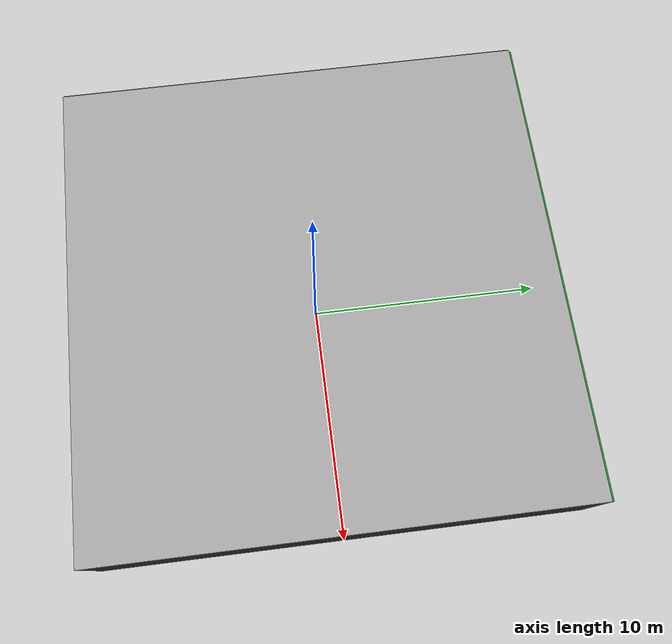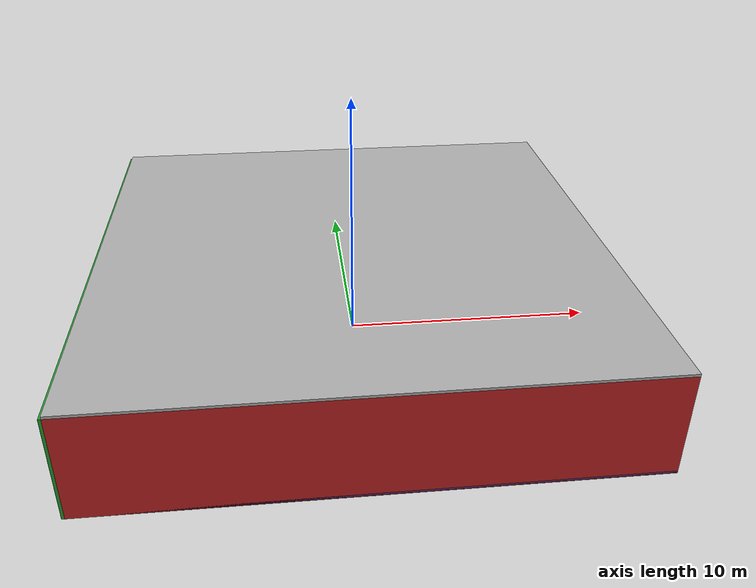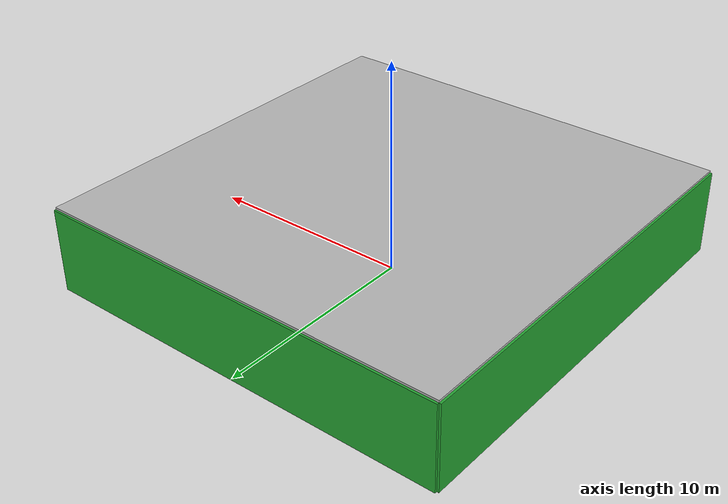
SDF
<sdf version="1.4">
 <world name="default">
  <physics type="ode">
   <max_step_size>0.001</max_step_size>
   <real_time_factor>1</real_time_factor>
   <real_time_update_rate>1000</real_time_update_rate>
   <gravity>0 0 -9.8</gravity>
  </physics>
  <scene><ambient>0.4 0.4 0.4 1</ambient><background>0.7 0.7 0.7 1</background><shadows>1</shadows></scene>
  <model name="Surrounding">
   <static>1</static>
   <link name="Ceiling">
    <collision name="Ceiling_Collision"><geometry><box><size>20 20 0.1</size></box></geometry></collision>
    <visual name="Ceiling_Visual">
     <geometry><box><size>20 20 0.1</size></box></geometry>
     <material>
      <script><uri>file://media/materials/scripts/gazebo.material</uri><name>Gazebo/LightOff</name></script>
     </material>
    </visual>
    <pose>0 0 4.05 0 0 0</pose>
   </link>
   <link name="Wall_South">
    <collision name="Wall_South_Collision">
     <geometry><box><size>20 0 4</size></box></geometry>
     <pose>0 0 2 0 -0 0</pose>
    </collision>
    <visual name="Wall_South_Visual">
     <pose>0 0 2 0 -0 0</pose>
     <geometry><box><size>20 0 4</size></box></geometry>
     <material>
      <script><uri>file://media/materials/scripts/gazebo.material</uri><name>Gazebo/Red</name></script>
     </material>
    </visual>
    <velocity_decay><linear>0</linear><angular>0</angular></velocity_decay>
    <pose>0 -10 0 0 -0 0</pose>
   </link>
   <link name="Wall_East">
    <collision name="Wall_21_Collision">
     <geometry><box><size>20 0 4</size></box></geometry>
     <pose>0 0 2 0 -0 0</pose>
    </collision>
    <visual name="Wall_21_Visual">
     <pose>0 0 2 0 -0 0</pose>
     <geometry><box><size>20 0 4</size></box></geometry>
     <material>
      <script><uri>file://media/materials/scripts/gazebo.material</uri><name>Gazebo/FlatBlack</name></script>
     </material>
    </visual>
    <velocity_decay><linear>0</linear><angular>0</angular></velocity_decay>
    <pose>10 0 0 0 -0 1.5708</pose>
   </link>
   <link name="Wall_North">
    <collision name="Wall_22_Collision">
     <geometry><box><size>20 0.2 4</size></box></geometry>
     <pose>0 0 2 0 -0 0</pose>
    </collision>
    <visual name="Wall_22_Visual">
     <pose>0 0 2 0 -0 0</pose>
     <geometry><box><size>20 0.2 4</size></box></geometry>
     <material>
      <script><uri>file://media/materials/scripts/gazebo.material</uri><name>Gazebo/Green</name></script>
     </material>
    </visual>
    <velocity_decay><linear>0</linear><angular>0</angular></velocity_decay>
    <pose>0 10 0 0 -0 0</pose>
   </link>
   <link name="Wall_West">
    <collision name="Wall_23_Collision">
     <geometry><box><size>20 0.2 4</size></box></geometry>
     <pose>0 0 2 0 -0 0</pose>
    </collision>
    <visual name="Wall_23_Visual">
     <pose>0 0 2 0 -0 0</pose>
     <geometry><box><size>20 0.2 4</size></box></geometry>
     <material>
      <script><uri>file://media/materials/scripts/gazebo.material</uri><name>Gazebo/Green</name></script>
     </material>
    </visual>
    <velocity_decay><linear>0</linear><angular>0</angular></velocity_decay>
    <pose>-10 0 0 0 0 -1.5708</pose>
   </link>
   <link name="Ground_link">
    <collision name="collision">
     <pose>0 0 .05 0 -0 0</pose>
     <geometry><box><size>20 20 0.1</size></box></geometry>
    </collision>
    <visual name="visual">
     <pose>0 0 .05 0 -0 0</pose>
     <geometry><box><size>20 20 0.1</size></box></geometry>
     <material>
      <script><uri>file://media/materials/scripts/gazebo.material</uri><name>Gazebo/BlueTransparent</name></script>
     </material>
    </visual>
   </link>
   <static>1</static>
  </model>
  <spherical_coordinates>
   <surface_model>EARTH_WGS84</surface_model>
   <latitude_deg>0</latitude_deg>
   <longitude_deg>0</longitude_deg>
   <elevation>0</elevation>
   <heading_deg>0</heading_deg>
  </spherical_coordinates>
  <light name="lightball_0" type="diffuse">
   <diffuse>0.8 0.8 0.8 1</diffuse>
   <specular>0.2 0.2 0.2 1</specular>
   <attenuation>
    <range>100</range>
    <constant>0.7</constant>
    <linear>0.01</linear>
    <quadratic>0.001</quadratic>
   </attenuation>
   <direction>-0.5 0.1 -0.9</direction>
   <pose>7.54759628249 3.5170015428 2.12966212245 0 0 0</pose>
  </light>
  <light name="lightball_1" type="diffuse">
   <diffuse>0.8 0.8 0.8 1</diffuse>
   <specular>0.2 0.2 0.2 1</specular>
   <attenuation>
    <range>100</range>
    <constant>0.7</constant>
    <linear>0.01</linear>
    <quadratic>0.001</quadratic>
   </attenuation>
   <direction>-0.5 0.1 -0.9</direction>
   <pose>4.18579751937 3.17313857253 0.708575945205 0 0 0</pose>
  </light>
  <light name="lightball_2" type="diffuse">
   <diffuse>0.8 0.8 0.8 1</diffuse>
   <specular>0.2 0.2 0.2 1</specular>
   <attenuation>
    <range>100</range>
    <constant>0.7</constant>
    <linear>0.01</linear>
    <quadratic>0.001</quadratic>
   </attenuation>
   <direction>-0.5 0.1 -0.9</direction>
   <pose>-6.69960521254 -1.26834901182 3.74358991565 0 0 0</pose>
  </light>
  <light name="lightball_3" type="diffuse">
   <diffuse>0.8 0.8 0.8 1</diffuse>
   <specular>0.2 0.2 0.2 1</specular>
   <attenuation>
    <range>100</range>
    <constant>0.7</constant>
    <linear>0.01</linear>
    <quadratic>0.001</quadratic>
   </attenuation>
   <direction>-0.5 0.1 -0.9</direction>
   <pose>3.14828389095 0.538726785191 1.09333234281 0 0 0</pose>
  </light>
  <light name="lightball_4" type="diffuse">
   <diffuse>0.8 0.8 0.8 1</diffuse>
   <specular>0.2 0.2 0.2 1</specular>
   <attenuation>
    <range>100</range>
    <constant>0.7</constant>
    <linear>0.01</linear>
    <quadratic>0.001</quadratic>
   </attenuation>
   <direction>-0.5 0.1 -0.9</direction>
   <pose>1.6676439723 3.6906395983 2.98576522516 0 0 0</pose>
  </light>
  <light name="lightball_5" type="diffuse">
   <diffuse>0.8 0.8 0.8 1</diffuse>
   <specular>0.2 0.2 0.2 1</specular>
   <attenuation>
    <range>100</range>
    <constant>0.7</constant>
    <linear>0.01</linear>
    <quadratic>0.001</quadratic>
   </attenuation>
   <direction>-0.5 0.1 -0.9</direction>
   <pose>-3.93399369963 -2.35812336119 2.13718044926 0 0 0</pose>
  </light>
  <light name="lightball_6" type="diffuse">
   <diffuse>0.8 0.8 0.8 1</diffuse>
   <specular>0.2 0.2 0.2 1</specular>
   <attenuation>
    <range>100</range>
    <constant>0.7</constant>
    <linear>0.01</linear>
    <quadratic>0.001</quadratic>
   </attenuation>
   <direction>-0.5 0.1 -0.9</direction>
   <pose>-6.12491631525 9.56140633596 0.97857873711 0 0 0</pose>
  </light>
  <light name="lightball_7" type="diffuse">
   <diffuse>0.8 0.8 0.8 1</diffuse>
   <specular>0.2 0.2 0.2 1</specular>
   <attenuation>
    <range>100</range>
    <constant>0.7</constant>
    <linear>0.01</linear>
    <quadratic>0.001</quadratic>
   </attenuation>
   <direction>-0.5 0.1 -0.9</direction>
   <pose>-4.07092802987 6.77257638956 1.61315752529 0 0 0</pose>
  </light>
  <light name="lightball_8" type="diffuse">
   <diffuse>0.8 0.8 0.8 1</diffuse>
   <specular>0.2 0.2 0.2 1</specular>
   <attenuation>
    <range>100</range>
    <constant>0.7</constant>
    <linear>0.01</linear>
    <quadratic>0.001</quadratic>
   </attenuation>
   <direction>-0.5 0.1 -0.9</direction>
   <pose>2.90853421125 2.68167802753 0.705003848646 0 0 0</pose>
  </light>
  <light name="lightball_9" type="diffuse">
   <diffuse>0.8 0.8 0.8 1</diffuse>
   <specular>0.2 0.2 0.2 1</specular>
   <attenuation>
    <range>100</range>
    <constant>0.7</constant>
    <linear>0.01</linear>
    <quadratic>0.001</quadratic>
   </attenuation>
   <direction>-0.5 0.1 -0.9</direction>
   <pose>1.24800099428 -2.48522607038 0.895010885771 0 0 0</pose>
  </light>
  <light name="lightball_10" type="diffuse">
   <diffuse>0.8 0.8 0.8 1</diffuse>
   <specular>0.2 0.2 0.2 1</specular>
   <attenuation>
    <range>100</range>
    <constant>0.7</constant>
    <linear>0.01</linear>
    <quadratic>0.001</quadratic>
   </attenuation>
   <direction>-0.5 0.1 -0.9</direction>
   <pose>-7.72572107348 -0.205610527645 1.23481489707 0 0 0</pose>
  </light>
  <include><uri>model://cabinet</uri><pose>-7.42654451562 0.546059101927 0 0 0 3.00809244864</pose></include>
  <include><uri>model://cabinet</uri><pose>-4.74487437794 -2.24245742519 0 0 0 1.05774105301</pose></include>
  <include><uri>model://cabinet</uri><pose>-2.44776601265 -0.673818069403 0 0 0 1.43165432912</pose></include>
  <include>
   <uri>model://robocup_3Dsim_goal</uri>
   <pose>-0.493949980512 5.50880634267 0 0 0 2.57257669081</pose>
  </include>
  <include><uri>model://table</uri><pose>-1.19307583704 7.02291974256 0 0 0 2.81391568977</pose></include>
  <include><uri>model://cabinet</uri><pose>2.50169516608 -2.19986687486 0 0 0 0.717638305982</pose></include>
  <include>
   <uri>model://construction_cone</uri>
   <pose>0.593346881002 8.63699484525 0 0 0 1.37968842568</pose>
  </include>
  <include><uri>model://table</uri><pose>5.51334640416 -7.15650790244 0 0 0 0.252270132203</pose></include>
 </world>
</sdf>

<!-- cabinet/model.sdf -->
<sdf version="1.5">
  <model name="cabinet">
    <static>true</static>
    <link name="cabinet_bottom_plate">
      <inertial>
        <pose>0 0 -1 0 0 0</pose>
        <inertia>
          <ixx>2.050000</ixx>
          <ixy>0</ixy>
          <ixz>0</ixz>
          <iyy>2.050000</iyy>
          <iyz>0</iyz>
          <izz>2.050000</izz>
        </inertia>
        <mass>25.000000</mass>
      </inertial>
      <collision name="cabinet_bottom_plate_geom">
        <pose>0 0 0.010000 0 0 0</pose>
        <geometry>
          <box>
            <size>0.450000 0.450000 0.020000</size>
          </box>
        </geometry>
      </collision>
      <visual name="cabinet_bottom_plate_geom_visual">
        <pose>0 0 0.010000 0 0 0</pose>
        <geometry>
          <box>
            <size>0.450000 0.450000 0.020000</size>
          </box>
        </geometry>
        <material>
          <script>
            <uri>model://media/materials/scripts/gazebo.material</uri>
            <name>Gazebo/Wood</name>
          </script>
        </material>
      </visual>
      <collision name="cabinet_bottom_plate_geom_cabinet_back_plate">
        <pose>0.235000 0 0.510000 0 0 0</pose>
        <geometry>
          <box>
            <size>0.020000 0.450000 1.020000</size>
          </box>
        </geometry>
      </collision>
      <visual name="cabinet_bottom_plate_geom_cabinet_back_plate_visual">
        <pose>0.235000 0 0.510000 0 0 0</pose>
        <geometry>
          <box>
            <size>0.020000 0.450000 1.020000</size>
          </box>
        </geometry>
        <material>
          <script>
            <uri>model://media/materials/scripts/gazebo.material</uri>
            <name>Gazebo/Wood</name>
          </script>
        </material>
      </visual>
      <collision name="cabinet_bottom_plate_geom_cabinet_left_plate">
        <pose>0 0.235000 0.510000 0 0 0</pose>
        <geometry>
          <box>
            <size>0.450000 0.020000 1.020000</size>
          </box>
        </geometry>
      </collision>
      <visual name="cabinet_bottom_plate_geom_cabinet_left_plate_visual">
        <pose>0 0.235000 0.510000 0 0 0</pose>
        <geometry>
          <box>
            <size>0.450000 0.020000 1.020000</size>
          </box>
        </geometry>
        <material>
          <script>
            <uri>model://media/materials/scripts/gazebo.material</uri>
            <name>Gazebo/Wood</name>
          </script>
        </material>
      </visual>
      <collision name="cabinet_bottom_plate_geom_cabinet_middle_plate">
        <pose>0 0 0.510000 0 0 0</pose>
        <geometry>
          <box>
            <size>0.450000 0.450000 0.020000</size>
          </box>
        </geometry>
      </collision>
      <visual name="cabinet_bottom_plate_geom_cabinet_middle_plate_visual">
        <pose>0 0 0.510000 0 0 0</pose>
        <geometry>
          <box>
            <size>0.450000 0.450000 0.020000</size>
          </box>
        </geometry>
        <material>
          <script>
            <uri>model://media/materials/scripts/gazebo.material</uri>
            <name>Gazebo/Wood</name>
          </script>
        </material>
      </visual>
      <collision name="cabinet_bottom_plate_geom_cabinet_right_plate">
        <pose>0 -0.235000 0.510000 0 0 0</pose>
        <geometry>
          <box>
            <size>0.450000 0.020000 1.020000</size>
          </box>
        </geometry>
      </collision>
      <visual name="cabinet_bottom_plate_geom_cabinet_right_plate_visual">
        <pose>0 -0.235000 0.510000 0 0 0</pose>
        <geometry>
          <box>
            <size>0.450000 0.020000 1.020000</size>
          </box>
        </geometry>
        <material>
          <script>
            <uri>model://media/materials/scripts/gazebo.material</uri>
            <name>Gazebo/Wood</name>
          </script>
        </material>
      </visual>
      <collision name="cabinet_bottom_plate_geom_cabinet_top_plate">
        <pose>0 0 1.010000 0 0 0</pose>
        <geometry>
          <box>
            <size>0.450000 0.450000 0.020000</size>
          </box>
        </geometry>
      </collision>
      <visual name="cabinet_bottom_plate_geom_cabinet_top_plate_visual">
        <pose>0 0 1.010000 0 0 0</pose>
        <geometry>
          <box>
            <size>0.450000 0.450000 0.020000</size>
          </box>
        </geometry>
        <material>
          <script>
            <uri>model://media/materials/scripts/gazebo.material</uri>
            <name>Gazebo/Wood</name>
          </script>
        </material>
      </visual>
    </link>
  </model>
</sdf>

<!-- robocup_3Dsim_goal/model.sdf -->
<sdf version="1.5">
  <model name="robocup_3d_goal">
    <static>true</static>
    <link name="left_post">
      <pose>0 1.05 0.45 0 0 0</pose>
      <collision name="collision">
        <geometry>
          <cylinder>
            <radius>0.05</radius>
            <length>0.9</length>
          </cylinder>
        </geometry>
      </collision>
      <visual name="visual">
        <geometry>
          <cylinder>
            <radius>0.05</radius>
            <length>0.9</length>
          </cylinder>
        </geometry>
        <material>
          <script>
            <uri>file://media/materials/scripts/gazebo.material</uri>
            <name>Gazebo/ZincYellow</name>
          </script>
        </material>
      </visual>
    </link>
    <link name="left_support_horiz_lower">
      <pose>0.30 1.05 0.01 0 0 0</pose>
      <collision name="collision">
        <geometry>
          <box>
            <size>0.50 0.02 0.02</size>
          </box>
        </geometry>
      </collision>
      <visual name="visual">
        <geometry>
          <box>
            <size>0.50 0.02 0.02</size>
          </box>
        </geometry>
        <material>
          <script>
            <uri>file://media/materials/scripts/gazebo.material</uri>
            <name>Gazebo/White</name>
          </script>
        </material>
      </visual>
    </link>
    <link name="left_support_horiz_upper">
      <pose>0.30 1.05 0.79 0 0 0</pose>
      <collision name="collision">
        <geometry>
          <box>
            <size>0.50 0.02 0.02</size>
          </box>
        </geometry>
      </collision>
      <visual name="visual">
        <geometry>
          <box>
            <size>0.50 0.02 0.02</size>
          </box>
        </geometry>
        <material>
          <script>
            <uri>file://media/materials/scripts/gazebo.material</uri>
            <name>Gazebo/White</name>
          </script>
        </material>
      </visual>
    </link>
    <link name="left_support_vertical">
      <pose>0.56 1.05 0.4 0 1.5708 0</pose>
      <collision name="collision">
        <geometry>
          <box>
            <size>0.80 0.02 0.02</size>
          </box>
        </geometry>
      </collision>
      <visual name="visual">
        <geometry>
          <box>
            <size>0.80 0.02 0.02</size>
          </box>
        </geometry>
        <material>
          <script>
            <uri>file://media/materials/scripts/gazebo.material</uri>
            <name>Gazebo/White</name>
          </script>
        </material>
      </visual>
    </link>
    <link name="right_support_horiz_lower">
      <pose>0.30 -1.05 0.01 0 0 0</pose>
      <collision name="collision">
        <geometry>
          <box>
            <size>0.50 0.02 0.02</size>
          </box>
        </geometry>
      </collision>
      <visual name="visual">
        <geometry>
          <box>
            <size>0.50 0.02 0.02</size>
          </box>
        </geometry>
        <material>
          <script>
            <uri>file://media/materials/scripts/gazebo.material</uri>
            <name>Gazebo/White</name>
          </script>
        </material>
      </visual>
    </link>
    <link name="right_support_horiz_upper">
      <pose>0.30 -1.05 0.79 0 0 0</pose>
      <collision name="collision">
        <geometry>
          <box>
            <size>0.50 0.02 0.02</size>
          </box>
        </geometry>
      </collision>
      <visual name="visual">
        <geometry>
          <box>
            <size>0.50 0.02 0.02</size>
          </box>
        </geometry>
        <material>
          <script>
            <uri>file://media/materials/scripts/gazebo.material</uri>
            <name>Gazebo/White</name>
          </script>
        </material>
      </visual>
    </link>
    <link name="right_support_vertical">
      <pose>0.56 -1.05 0.4 0 1.5708 0</pose>
      <collision name="collision">
        <geometry>
          <box>
            <size>0.80 0.02 0.02</size>
          </box>
        </geometry>
      </collision>
      <visual name="visual">
        <geometry>
          <box>
            <size>0.80 0.02 0.02</size>
          </box>
        </geometry>
        <material>
          <script>
            <uri>file://media/materials/scripts/gazebo.material</uri>
            <name>Gazebo/White</name>
          </script>
        </material>
      </visual>
    </link>
    <link name="center_support_horiz_lower">
      <pose>0.56 0 0.01 0 1.5708 0</pose>
      <collision name="collision">
        <geometry>
          <box>
            <size>0.02 2.08 0.02</size>
          </box>
        </geometry>
      </collision>
      <visual name="visual">
        <geometry>
          <box>
            <size>0.02 2.08 0.02</size>
          </box>
        </geometry>
        <material>
          <script>
            <uri>file://media/materials/scripts/gazebo.material</uri>
            <name>Gazebo/White</name>
          </script>
        </material>
      </visual>
    </link>
    <link name="center_support_horiz_upper">
      <pose>0.56 0 0.79 0 1.5708 0</pose>
      <collision name="collision">
        <geometry>
          <box>
            <size>0.02 2.08 0.02</size>
          </box>
        </geometry>
      </collision>
      <visual name="visual">
        <geometry>
          <box>
            <size>0.02 2.08 0.02</size>
          </box>
        </geometry>
        <material>
          <script>
            <uri>file://media/materials/scripts/gazebo.material</uri>
            <name>Gazebo/White</name>
          </script>
        </material>
      </visual>
    </link>
    <link name="right_post">
      <pose>0 -1.05 0.45 0 0 0</pose>
      <collision name="collision">
        <geometry>
          <cylinder>
            <radius>0.05</radius>
            <length>0.9</length>
          </cylinder>
        </geometry>
      </collision>
      <visual name="visual">
        <geometry>
          <cylinder>
            <radius>0.05</radius>
            <length>0.9</length>
          </cylinder>
        </geometry>
        <material>
          <script>
            <uri>file://media/materials/scripts/gazebo.material</uri>
            <name>Gazebo/ZincYellow</name>
          </script>
        </material>
      </visual>
    </link>
    <link name="crossbar">
      <pose>0 0 0.85 1.57 1.57 0</pose>
      <collision name="collision">
        <geometry>
          <cylinder>
            <radius>0.05</radius>
            <length>2.0</length>
          </cylinder>
        </geometry>
      </collision>
      <visual name="visual">
        <geometry>
          <cylinder>
            <radius>0.05</radius>
            <length>2.0</length>
          </cylinder>
        </geometry>
        <material>
          <script>
            <uri>file://media/materials/scripts/gazebo.material</uri>
            <name>Gazebo/ZincYellow</name>
          </script>
        </material>
      </visual>
    </link>
    <link name="center_net">
      <pose>0.56 0 0.40 0 0 0</pose>
      <collision name="collision">
        <geometry>
          <box>
            <size>0.01 2.1 0.80</size>
          </box>
        </geometry>
      </collision>
      <visual name="visual">
        <geometry>
          <box>
            <size>0.01 2.1 0.80</size>
          </box>
        </geometry>
        <material>
          <script>
            <uri>model://../model_source/models/robocup09_spl_field/materials/scripts/</uri>
            <uri>model://../model_source/models/robocup09_spl_field/materials/textures/</uri>
            <name>RoboCup/Net</name>
          </script>
        </material>
      </visual>
    </link>
    <link name="left_net">
      <pose>0.30 1.05 0.40 0 0 0</pose>
      <collision name="collision">
        <geometry>
          <box>
            <size>0.50 0.01 0.76</size>
          </box>
        </geometry>
      </collision>
      <visual name="visual">
        <geometry>
          <box>
            <size>0.50 0.01 0.76</size>
          </box>
        </geometry>
        <material>
          <script>
            <uri>model://../model_source/models/robocup09_spl_field/materials/scripts/</uri>
            <uri>model://../model_source/models/robocup09_spl_field/materials/textures/</uri>
            <name>RoboCup/Net</name>
          </script>
        </material>
      </visual>
    </link>
    <link name="right_net">
      <pose>0.30 -1.05 0.40 0 0 0</pose>
      <collision name="collision">
        <geometry>
          <box>
            <size>0.50 0.01 0.76</size>
          </box>
        </geometry>
      </collision>
      <visual name="visual">
        <geometry>
          <box>
            <size>0.50 0.01 0.76</size>
          </box>
        </geometry>
        <material>
          <script>
            <uri>model://../model_source/models/robocup09_spl_field/materials/scripts/</uri>
            <uri>model://../model_source/models/robocup09_spl_field/materials/textures/</uri>
            <name>RoboCup/Net</name>
          </script>
        </material>
      </visual>
    </link>
  </model>
</sdf>

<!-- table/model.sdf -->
<sdf version="1.5">
  <model name="table">
    <static>true</static>
    <link name="link">
      <collision name="surface">
        <pose>0 0 1.0 0 0 0</pose>
        <geometry>
          <box>
            <size>1.5 0.8 0.03</size>
          </box>
        </geometry>
        <surface>
          <friction>
            <ode>
              <mu>0.6</mu>
              <mu2>0.6</mu2>
            </ode>
          </friction>
        </surface>
      </collision>
      <visual name="visual1">
        <pose>0 0 1.0 0 0 0</pose>
        <geometry>
          <box>
            <size>1.5 0.8 0.03</size>
          </box>
        </geometry>
        <material>
          <script>
            <uri>model://media/materials/scripts/gazebo.material</uri>
            <name>Gazebo/Wood</name>
          </script>
        </material>
      </visual>
      <collision name="front_left_leg">
        <pose>0.68 0.38 0.5 0 0 0</pose>
        <geometry>
          <cylinder>
            <radius>0.02</radius>
            <length>1.0</length>
          </cylinder>
        </geometry>
      </collision>
      <visual name="front_left_leg">
        <pose>0.68 0.38 0.5 0 0 0</pose>
        <geometry>
          <cylinder>
            <radius>0.02</radius>
            <length>1.0</length>
          </cylinder>
        </geometry>
        <material>
          <script>
            <uri>model://media/materials/scripts/gazebo.material</uri>
            <name>Gazebo/Grey</name>
          </script>
        </material>
      </visual>
      <collision name="front_right_leg">
        <pose>0.68 -0.38 0.5 0 0 0</pose>
        <geometry>
          <cylinder>
            <radius>0.02</radius>
            <length>1.0</length>
          </cylinder>
        </geometry>
      </collision>
      <visual name="front_right_leg">
        <pose>0.68 -0.38 0.5 0 0 0</pose>
        <geometry>
          <cylinder>
            <radius>0.02</radius>
            <length>1.0</length>
          </cylinder>
        </geometry>
        <material>
          <script>
            <uri>model://media/materials/scripts/gazebo.material</uri>
            <name>Gazebo/Grey</name>
          </script>
        </material>
      </visual>
      <collision name="back_right_leg">
        <pose>-0.68 -0.38 0.5 0 0 0</pose>
        <geometry>
          <cylinder>
            <radius>0.02</radius>
            <length>1.0</length>
          </cylinder>
        </geometry>
      </collision>
      <visual name="back_right_leg">
        <pose>-0.68 -0.38 0.5 0 0 0</pose>
        <geometry>
          <cylinder>
            <radius>0.02</radius>
            <length>1.0</length>
          </cylinder>
        </geometry>
        <material>
          <script>
            <uri>model://media/materials/scripts/gazebo.material</uri>
            <name>Gazebo/Grey</name>
          </script>
        </material>
      </visual>
      <collision name="back_left_leg">
        <pose>-0.68 0.38 0.5 0 0 0</pose>
        <geometry>
          <cylinder>
            <radius>0.02</radius>
            <length>1.0</length>
          </cylinder>
        </geometry>
      </collision>
      <visual name="back_left_leg">
        <pose>-0.68 0.38 0.5 0 0 0</pose>
        <geometry>
          <cylinder>
            <radius>0.02</radius>
            <length>1.0</length>
          </cylinder>
        </geometry>
        <material>
          <script>
            <uri>model://media/materials/scripts/gazebo.material</uri>
            <name>Gazebo/Grey</name>
          </script>
        </material>
      </visual>
    </link>
  </model>
</sdf>

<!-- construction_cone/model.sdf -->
<sdf version="1.5">
  <model name="Construction Cone">
    <link name="link">
      <collision name="collision">
        <geometry>
          <mesh>
            <scale>10 10 10</scale>
            <uri>file://isr-testbed/construction_cone/meshes/construction_cone.dae</uri>
          </mesh>
        </geometry>
      </collision>
      <visual name="visual">
        <geometry>
          <mesh>
            <scale>10 10 10</scale>
            <uri>file://isr-testbed/construction_cone/meshes/construction_cone.dae</uri>
          </mesh>
        </geometry>
      </visual>
    </link>
  </model>
</sdf>
